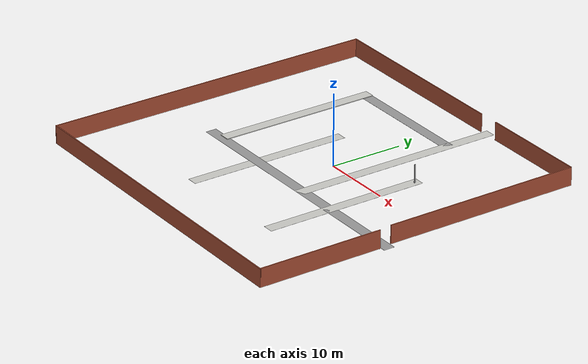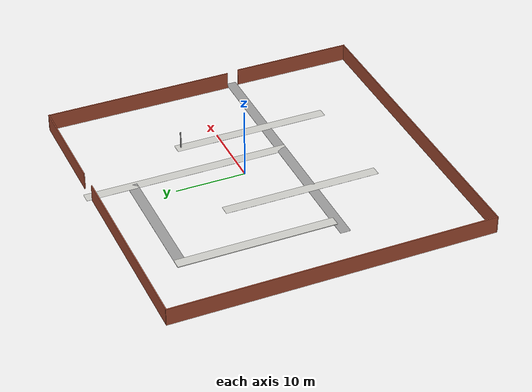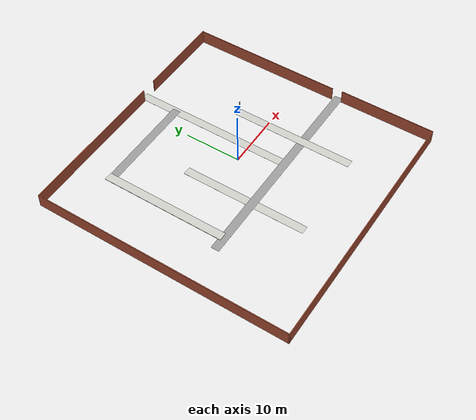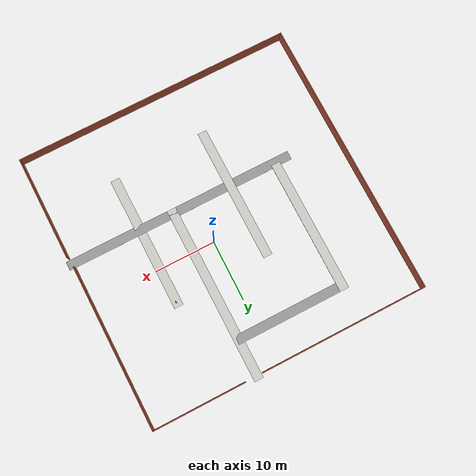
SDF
<sdf version="1.6">
 <world name="default">
  <light name="sun" type="directional">
   <pose>0 0 10 0 -0 0</pose>
   <diffuse>0.8 0.8 0.8 1</diffuse>
   <specular>0.2 0.2 0.2 1</specular>
   <attenuation>
    <range>1000</range>
    <constant>0.9</constant>
    <linear>0.01</linear>
    <quadratic>0.001</quadratic>
   </attenuation>
   <direction>-0.5 0.1 -0.9</direction>
  </light>
  <gravity>0 0 -9.8</gravity>
  <magnetic_field>6e-06 2.3e-05 -4.2e-05</magnetic_field>
  <atmosphere type="adiabatic"/>
  <physics name="default_physics" default="0" type="ode">
   <max_step_size>0.001</max_step_size>
   <real_time_factor>1</real_time_factor>
   <real_time_update_rate>1000</real_time_update_rate>
  </physics>
  <scene><ambient>0.4 0.4 0.4 1</ambient><background>0.7 0.7 0.7 1</background><shadows>1</shadows></scene>
  <spherical_coordinates>
   <surface_model>EARTH_WGS84</surface_model>
   <latitude_deg>0</latitude_deg>
   <longitude_deg>0</longitude_deg>
   <elevation>0</elevation>
   <heading_deg>0</heading_deg>
  </spherical_coordinates>
  <model name="wooden_peg">
   <link name="link">
    <pose>0 0 0.04 0 -0 0</pose>
    <inertial>
     <mass>0.0175</mass>
     <inertia>
      <ixx>9.74923e-06</ixx>
      <ixy>0</ixy>
      <ixz>0</ixz>
      <iyy>9.74923e-06</iyy>
      <iyz>0</iyz>
      <izz>8.31797e-07</izz>
     </inertia>
    </inertial>
    <collision name="collision">
     <geometry><cylinder><radius>0.00975</radius><length>0.08</length></cylinder></geometry>
     <surface>
      <contact>
       <poissons_ratio>0.347</poissons_ratio>
       <elastic_modulus>8.8e+09</elastic_modulus>
       <ode><kp>100000</kp><kd>100</kd><max_vel>100</max_vel><min_depth>0.001</min_depth></ode>
      </contact>
      <friction>
       <torsional>
        <coefficient>1</coefficient>
        <use_patch_radius>0</use_patch_radius>
        <surface_radius>0.01</surface_radius>
       </torsional>
      </friction>
     </surface>
    </collision>
    <visual name="visual">
     <geometry><cylinder><radius>0.00975</radius><length>0.08</length></cylinder></geometry>
     <material>
      <script><uri>file://media/materials/scripts/gazebo.material</uri><name>Gazebo/Wood</name></script>
     </material>
    </visual>
   </link>
   <pose>-4.51486 8.94783 -0.001 0 -0 0</pose>
  </model>
  <model name="Untitled_0">
   <pose>2.284 2.5 0 0 -0 0</pose>
   <link name="Wall_0">
    <collision name="Wall_0_Collision">
     <geometry><box><size>22.5 1.5 0.01</size></box></geometry>
     <pose>0 0 0.005 0 -0 0</pose>
    </collision>
    <visual name="Wall_0_Visual">
     <pose>0 0 0.005 0 -0 0</pose>
     <geometry><box><size>22.5 1.5 0.01</size></box></geometry>
     <material>
      <script><uri>file://media/materials/scripts/gazebo.material</uri><name>Gazebo/CeilingTiled</name></script>
      <ambient>1 1 1 1</ambient>
     </material>
     <meta><layer>0</layer></meta>
    </visual>
    <pose>6.98367 -7.32548 0 0 -0 1.5708</pose>
   </link>
   <link name="Wall_1">
    <collision name="Wall_1_Collision">
     <geometry><box><size>0.15 0.15 2.5</size></box></geometry>
     <pose>0 0 1.25 0 -0 0</pose>
    </collision>
    <visual name="Wall_1_Visual">
     <pose>0 0 1.25 0 -0 0</pose>
     <geometry><box><size>0.15 0.15 2.5</size></box></geometry>
     <material>
      <script><uri>file://media/materials/scripts/gazebo.material</uri><name>Gazebo/Grey</name></script>
      <ambient>1 1 1 1</ambient>
     </material>
     <meta><layer>0</layer></meta>
    </visual>
    <pose>7.06503 3.17452 0 0 -0 0</pose>
   </link>
   <link name="Wall_10">
    <collision name="Wall_10_Collision">
     <geometry><box><size>18.208 1.5 0.01</size></box></geometry>
     <pose>0 0 0.005 0 -0 0</pose>
    </collision>
    <visual name="Wall_10_Visual">
     <pose>0 0 0.005 0 -0 0</pose>
     <geometry><box><size>18.208 1.5 0.01</size></box></geometry>
     <material>
      <script><uri>file://media/materials/scripts/gazebo.material</uri><name>Gazebo/Grey</name></script>
      <ambient>1 1 1 1</ambient>
     </material>
     <meta><layer>0</layer></meta>
    </visual>
    <pose>-7.638 12.5 0 0 -0 0</pose>
   </link>
   <link name="Wall_13">
    <collision name="Wall_13_Collision">
     <geometry><box><size>29.5 1.5 0.01</size></box></geometry>
     <pose>0 0 0.005 0 -0 0</pose>
    </collision>
    <visual name="Wall_13_Visual">
     <pose>0 0 0.005 0 -0 0</pose>
     <geometry><box><size>29.5 1.5 0.01</size></box></geometry>
     <material>
      <script><uri>file://media/materials/scripts/gazebo.material</uri><name>Gazebo/CeilingTiled</name></script>
      <ambient>1 1 1 1</ambient>
     </material>
     <meta><layer>0</layer></meta>
    </visual>
    <pose>1.216 4.5 0 0 -0 1.5708</pose>
   </link>
   <link name="Wall_3">
    <collision name="Wall_3_Collision">
     <geometry><box><size>22.5 1.5 0.01</size></box></geometry>
     <pose>0 0 0.005 0 -0 0</pose>
    </collision>
    <visual name="Wall_3_Visual">
     <pose>0 0 0.005 0 -0 0</pose>
     <geometry><box><size>22.5 1.5 0.01</size></box></geometry>
     <material>
      <script><uri>file://media/materials/scripts/gazebo.material</uri><name>Gazebo/CeilingTiled</name></script>
      <ambient>1 1 1 1</ambient>
     </material>
     <meta><layer>0</layer></meta>
    </visual>
    <pose>-8.784 -8 0 0 -0 1.5708</pose>
   </link>
   <link name="Wall_6">
    <collision name="Wall_6_Collision">
     <geometry><box><size>38.85 1.5 0.01</size></box></geometry>
     <pose>0 0 0.005 0 -0 0</pose>
    </collision>
    <visual name="Wall_6_Visual">
     <pose>0 0 0.005 0 -0 0</pose>
     <geometry><box><size>38.85 1.5 0.01</size></box></geometry>
     <material>
      <script><uri>file://media/materials/scripts/gazebo.material</uri><name>Gazebo/Grey</name></script>
      <ambient>1 1 1 1</ambient>
     </material>
     <meta><layer>0</layer></meta>
    </visual>
    <pose>0 -9.5 0 0 -0 0</pose>
   </link>
   <link name="Wall_8">
    <collision name="Wall_8_Collision">
     <geometry><box><size>22.5 1.5 0.1</size></box></geometry>
     <pose>0 0 0.05 0 -0 0</pose>
    </collision>
    <visual name="Wall_8_Visual">
     <pose>0 0 0.05 0 -0 0</pose>
     <geometry><box><size>22.5 1.5 0.1</size></box></geometry>
     <material>
      <script><uri>file://media/materials/scripts/gazebo.material</uri><name>Gazebo/CeilingTiled</name></script>
      <ambient>1 1 1 1</ambient>
     </material>
     <meta><layer>0</layer></meta>
    </visual>
    <pose>-16.784 2 0 0 -0 1.5708</pose>
   </link>
   <static>1</static>
  </model>
  <model name="Untitled_1">
   <pose>-2 -1.9755 0 0 -0 0</pose>
   <link name="Wall_15">
    <collision name="Wall_15_Collision">
     <geometry><box><size>46.15 0.15 2.5</size></box></geometry>
     <pose>0 0 1.25 0 -0 0</pose>
    </collision>
    <visual name="Wall_15_Visual">
     <pose>0 0 1.25 0 -0 0</pose>
     <geometry><box><size>46.15 0.15 2.5</size></box></geometry>
     <material>
      <script><uri>file://media/materials/scripts/gazebo.material</uri><name>Gazebo/Bricks</name></script>
      <ambient>1 1 1 1</ambient>
     </material>
     <meta><layer>0</layer></meta>
    </visual>
    <pose>1e-06 -23.0245 0 0 -0 0</pose>
   </link>
   <link name="Wall_16">
    <collision name="Wall_16_Collision">
     <geometry><box><size>17.239 0.15 2.5</size></box></geometry>
     <pose>0 0 1.25 0 -0 0</pose>
    </collision>
    <visual name="Wall_16_Visual">
     <pose>0 0 1.25 0 -0 0</pose>
     <geometry><box><size>17.239 0.15 2.5</size></box></geometry>
     <material>
      <script><uri>file://media/materials/scripts/gazebo.material</uri><name>Gazebo/Bricks</name></script>
      <ambient>1 1 1 1</ambient>
     </material>
     <meta><layer>0</layer></meta>
    </visual>
    <pose>23 -14.48 0 0 -0 1.5708</pose>
   </link>
   <link name="Wall_18">
    <collision name="Wall_18_Collision">
     <geometry><box><size>46.15 0.15 2.5</size></box></geometry>
     <pose>0 0 1.25 0 -0 0</pose>
    </collision>
    <visual name="Wall_18_Visual">
     <pose>0 0 1.25 0 -0 0</pose>
     <geometry><box><size>46.15 0.15 2.5</size></box></geometry>
     <material>
      <script><uri>file://media/materials/scripts/gazebo.material</uri><name>Gazebo/Bricks</name></script>
      <ambient>1 1 1 1</ambient>
     </material>
     <meta><layer>0</layer></meta>
    </visual>
    <pose>-23 -0.0245 0 0 -0 1.5708</pose>
   </link>
   <link name="Wall_19">
    <collision name="Wall_19_Collision">
     <geometry><box><size>27.65 0.15 2.5</size></box></geometry>
     <pose>0 0 1.25 0 -0 0</pose>
    </collision>
    <visual name="Wall_19_Visual">
     <pose>0 0 1.25 0 -0 0</pose>
     <geometry><box><size>27.65 0.15 2.5</size></box></geometry>
     <material>
      <script><uri>file://media/materials/scripts/gazebo.material</uri><name>Gazebo/Bricks</name></script>
      <ambient>1 1 1 1</ambient>
     </material>
     <meta><layer>0</layer></meta>
    </visual>
    <pose>-9.25 22.9755 0 0 -0 0</pose>
   </link>
   <link name="Wall_21">
    <collision name="Wall_21_Collision">
     <geometry><box><size>15.357 0.15 2.5</size></box></geometry>
     <pose>0 0 1.25 0 -0 0</pose>
    </collision>
    <visual name="Wall_21_Visual">
     <pose>0 0 1.25 0 -0 0</pose>
     <geometry><box><size>15.357 0.15 2.5</size></box></geometry>
     <material>
      <script><uri>file://media/materials/scripts/gazebo.material</uri><name>Gazebo/Bricks</name></script>
      <ambient>1 1 1 1</ambient>
     </material>
     <meta><layer>0</layer></meta>
    </visual>
    <pose>15.1345 23.0245 0 0 -0 0</pose>
   </link>
   <link name="Wall_22">
    <collision name="Wall_22_Collision">
     <geometry><box><size>27.25 0.15 2.5</size></box></geometry>
     <pose>0 0 1.25 0 -0 0</pose>
    </collision>
    <visual name="Wall_22_Visual">
     <pose>0 0 1.25 0 -0 0</pose>
     <geometry><box><size>27.25 0.15 2.5</size></box></geometry>
     <material>
      <script><uri>file://media/materials/scripts/gazebo.material</uri><name>Gazebo/Bricks</name></script>
      <ambient>1 1 1 1</ambient>
     </material>
     <meta><layer>0</layer></meta>
    </visual>
    <pose>22.738 9.4745 0 0 0 -1.5708</pose>
   </link>
   <static>1</static>
  </model>
 </world>
</sdf>
